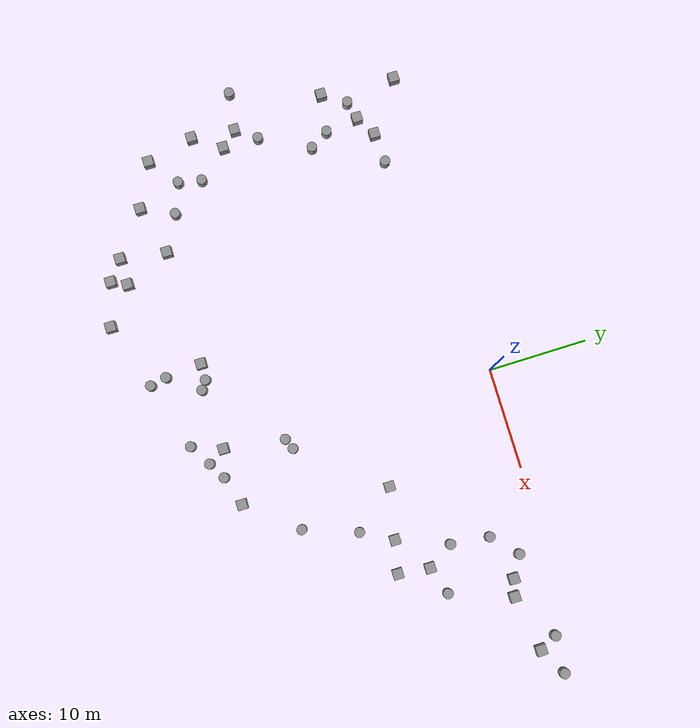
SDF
<sdf version="1.4">
 <world name="default">
  <include><uri>model://urdf/models/sun</uri></include>
  <model name="box_0">
   <pose>8.049341 -12.795973 0.500000 0.000000 0.000000 0.000000</pose>
   <link name="link">
    <inertial>
     <mass>1.000000</mass>
     <inertia>
      <ixx>0.166667</ixx>
      <ixy>0</ixy>
      <ixz>0</ixz>
      <iyy>0.166667</iyy>
      <iyz>0</iyz>
      <izz>0.166667</izz>
     </inertia>
    </inertial>
    <collision name="collision">
     <geometry><box><size>1.000000 1.000000 1.000000</size></box></geometry>
    </collision>
    <visual name="visual">
     <geometry><box><size>1.000000 1.000000 1.000000</size></box></geometry>
     <material>
      <script><name>Gazebo/Grey</name><uri>file://media/materials/scripts/gazebo.material</uri></script>
     </material>
    </visual>
   </link>
  </model>
  <model name="cylindar_3">
   <pose>-23.021515 -3.703456 0.500000 0.000000 0.000000 0.000000</pose>
   <link name="link">
    <inertial>
     <mass>1.000000</mass>
     <inertia><ixx>0.145833</ixx><ixy>0</ixy><ixz>0</ixz><iyy>0.145833</iyy><iyz>0</iyz><izz>0.125</izz></inertia>
    </inertial>
    <collision name="collision">
     <geometry><cylinder><radius>0.500000</radius><length>1.000000</length></cylinder></geometry>
    </collision>
    <visual name="visual">
     <geometry><cylinder><radius>0.500000</radius><length>1.000000</length></cylinder></geometry>
     <material>
      <script><name>Gazebo/Grey</name><uri>file://media/materials/scripts/gazebo.material</uri></script>
     </material>
    </visual>
   </link>
  </model>
  <model name="cylindar_5">
   <pose>-1.222128 -30.100586 0.500000 0.000000 0.000000 0.000000</pose>
   <link name="link">
    <inertial>
     <mass>1.000000</mass>
     <inertia><ixx>0.145833</ixx><ixy>0</ixy><ixz>0</ixz><iyy>0.145833</iyy><iyz>0</iyz><izz>0.125</izz></inertia>
    </inertial>
    <collision name="collision">
     <geometry><cylinder><radius>0.500000</radius><length>1.000000</length></cylinder></geometry>
    </collision>
    <visual name="visual">
     <geometry><cylinder><radius>0.500000</radius><length>1.000000</length></cylinder></geometry>
     <material>
      <script><name>Gazebo/Grey</name><uri>file://media/materials/scripts/gazebo.material</uri></script>
     </material>
    </visual>
   </link>
  </model>
  <model name="box_6">
   <pose>16.189619 -14.473854 0.500000 0.000000 0.000000 0.000000</pose>
   <link name="link">
    <inertial>
     <mass>1.000000</mass>
     <inertia>
      <ixx>0.166667</ixx>
      <ixy>0</ixy>
      <ixz>0</ixz>
      <iyy>0.166667</iyy>
      <iyz>0</iyz>
      <izz>0.166667</izz>
     </inertia>
    </inertial>
    <collision name="collision">
     <geometry><box><size>1.000000 1.000000 1.000000</size></box></geometry>
    </collision>
    <visual name="visual">
     <geometry><box><size>1.000000 1.000000 1.000000</size></box></geometry>
     <material>
      <script><name>Gazebo/Grey</name><uri>file://media/materials/scripts/gazebo.material</uri></script>
     </material>
    </visual>
   </link>
  </model>
  <model name="box_7">
   <pose>-31.569932 -7.850897 0.500000 0.000000 0.000000 0.000000</pose>
   <link name="link">
    <inertial>
     <mass>1.000000</mass>
     <inertia>
      <ixx>0.166667</ixx>
      <ixy>0</ixy>
      <ixz>0</ixz>
      <iyy>0.166667</iyy>
      <iyz>0</iyz>
      <izz>0.166667</izz>
     </inertia>
    </inertial>
    <collision name="collision">
     <geometry><box><size>1.000000 1.000000 1.000000</size></box></geometry>
    </collision>
    <visual name="visual">
     <geometry><box><size>1.000000 1.000000 1.000000</size></box></geometry>
     <material>
      <script><name>Gazebo/Grey</name><uri>file://media/materials/scripts/gazebo.material</uri></script>
     </material>
    </visual>
   </link>
  </model>
  <model name="cylindar_8">
   <pose>0.912190 -28.786770 0.500000 0.000000 0.000000 0.000000</pose>
   <link name="link">
    <inertial>
     <mass>1.000000</mass>
     <inertia><ixx>0.145833</ixx><ixy>0</ixy><ixz>0</ixz><iyy>0.145833</iyy><iyz>0</iyz><izz>0.125</izz></inertia>
    </inertial>
    <collision name="collision">
     <geometry><cylinder><radius>0.500000</radius><length>1.000000</length></cylinder></geometry>
    </collision>
    <visual name="visual">
     <geometry><cylinder><radius>0.500000</radius><length>1.000000</length></cylinder></geometry>
     <material>
      <script><name>Gazebo/Grey</name><uri>file://media/materials/scripts/gazebo.material</uri></script>
     </material>
    </visual>
   </link>
  </model>
  <model name="cylindar_9">
   <pose>-7.065513 -26.953023 0.500000 0.000000 0.000000 0.000000</pose>
   <link name="link">
    <inertial>
     <mass>1.000000</mass>
     <inertia><ixx>0.145833</ixx><ixy>0</ixy><ixz>0</ixz><iyy>0.145833</iyy><iyz>0</iyz><izz>0.125</izz></inertia>
    </inertial>
    <collision name="collision">
     <geometry><cylinder><radius>0.500000</radius><length>1.000000</length></cylinder></geometry>
    </collision>
    <visual name="visual">
     <geometry><cylinder><radius>0.500000</radius><length>1.000000</length></cylinder></geometry>
     <material>
      <script><name>Gazebo/Grey</name><uri>file://media/materials/scripts/gazebo.material</uri></script>
     </material>
    </visual>
   </link>
  </model>
  <model name="box_10">
   <pose>-31.115598 -0.322623 0.500000 0.000000 0.000000 0.000000</pose>
   <link name="link">
    <inertial>
     <mass>1.000000</mass>
     <inertia>
      <ixx>0.166667</ixx>
      <ixy>0</ixy>
      <ixz>0</ixz>
      <iyy>0.166667</iyy>
      <iyz>0</iyz>
      <izz>0.166667</izz>
     </inertia>
    </inertial>
    <collision name="collision">
     <geometry><box><size>1.000000 1.000000 1.000000</size></box></geometry>
    </collision>
    <visual name="visual">
     <geometry><box><size>1.000000 1.000000 1.000000</size></box></geometry>
     <material>
      <script><name>Gazebo/Grey</name><uri>file://media/materials/scripts/gazebo.material</uri></script>
     </material>
    </visual>
   </link>
  </model>
  <model name="box_12">
   <pose>-0.121073 -27.125855 0.500000 0.000000 0.000000 0.000000</pose>
   <link name="link">
    <inertial>
     <mass>1.000000</mass>
     <inertia>
      <ixx>0.166667</ixx>
      <ixy>0</ixy>
      <ixz>0</ixz>
      <iyy>0.166667</iyy>
      <iyz>0</iyz>
      <izz>0.166667</izz>
     </inertia>
    </inertial>
    <collision name="collision">
     <geometry><box><size>1.000000 1.000000 1.000000</size></box></geometry>
    </collision>
    <visual name="visual">
     <geometry><box><size>1.000000 1.000000 1.000000</size></box></geometry>
     <material>
      <script><name>Gazebo/Grey</name><uri>file://media/materials/scripts/gazebo.material</uri></script>
     </material>
    </visual>
   </link>
  </model>
  <model name="cylindar_14">
   <pose>1.834610 -20.665780 0.500000 0.000000 0.000000 0.000000</pose>
   <link name="link">
    <inertial>
     <mass>1.000000</mass>
     <inertia><ixx>0.145833</ixx><ixy>0</ixy><ixz>0</ixz><iyy>0.145833</iyy><iyz>0</iyz><izz>0.125</izz></inertia>
    </inertial>
    <collision name="collision">
     <geometry><cylinder><radius>0.500000</radius><length>1.000000</length></cylinder></geometry>
    </collision>
    <visual name="visual">
     <geometry><cylinder><radius>0.500000</radius><length>1.000000</length></cylinder></geometry>
     <material>
      <script><name>Gazebo/Grey</name><uri>file://media/materials/scripts/gazebo.material</uri></script>
     </material>
    </visual>
   </link>
  </model>
  <model name="cylindar_16">
   <pose>29.565730 -2.149706 0.500000 0.000000 0.000000 0.000000</pose>
   <link name="link">
    <inertial>
     <mass>1.000000</mass>
     <inertia><ixx>0.145833</ixx><ixy>0</ixy><ixz>0</ixz><iyy>0.145833</iyy><iyz>0</iyz><izz>0.125</izz></inertia>
    </inertial>
    <collision name="collision">
     <geometry><cylinder><radius>0.500000</radius><length>1.000000</length></cylinder></geometry>
    </collision>
    <visual name="visual">
     <geometry><cylinder><radius>0.500000</radius><length>1.000000</length></cylinder></geometry>
     <material>
      <script><name>Gazebo/Grey</name><uri>file://media/materials/scripts/gazebo.material</uri></script>
     </material>
    </visual>
   </link>
  </model>
  <model name="cylindar_18">
   <pose>19.340142 -10.447154 0.500000 0.000000 0.000000 0.000000</pose>
   <link name="link">
    <inertial>
     <mass>1.000000</mass>
     <inertia><ixx>0.145833</ixx><ixy>0</ixy><ixz>0</ixz><iyy>0.145833</iyy><iyz>0</iyz><izz>0.125</izz></inertia>
    </inertial>
    <collision name="collision">
     <geometry><cylinder><radius>0.500000</radius><length>1.000000</length></cylinder></geometry>
    </collision>
    <visual name="visual">
     <geometry><cylinder><radius>0.500000</radius><length>1.000000</length></cylinder></geometry>
     <material>
      <script><name>Gazebo/Grey</name><uri>file://media/materials/scripts/gazebo.material</uri></script>
     </material>
    </visual>
   </link>
  </model>
  <model name="box_19">
   <pose>-20.448026 -27.128200 0.500000 0.000000 0.000000 0.000000</pose>
   <link name="link">
    <inertial>
     <mass>1.000000</mass>
     <inertia>
      <ixx>0.166667</ixx>
      <ixy>0</ixy>
      <ixz>0</ixz>
      <iyy>0.166667</iyy>
      <iyz>0</iyz>
      <izz>0.166667</izz>
     </inertia>
    </inertial>
    <collision name="collision">
     <geometry><box><size>1.000000 1.000000 1.000000</size></box></geometry>
    </collision>
    <visual name="visual">
     <geometry><box><size>1.000000 1.000000 1.000000</size></box></geometry>
     <material>
      <script><name>Gazebo/Grey</name><uri>file://media/materials/scripts/gazebo.material</uri></script>
     </material>
    </visual>
   </link>
  </model>
  <model name="box_20">
   <pose>-21.140862 -31.742281 0.500000 0.000000 0.000000 0.000000</pose>
   <link name="link">
    <inertial>
     <mass>1.000000</mass>
     <inertia>
      <ixx>0.166667</ixx>
      <ixy>0</ixy>
      <ixz>0</ixz>
      <iyy>0.166667</iyy>
      <iyz>0</iyz>
      <izz>0.166667</izz>
     </inertia>
    </inertial>
    <collision name="collision">
     <geometry><box><size>1.000000 1.000000 1.000000</size></box></geometry>
    </collision>
    <visual name="visual">
     <geometry><box><size>1.000000 1.000000 1.000000</size></box></geometry>
     <material>
      <script><name>Gazebo/Grey</name><uri>file://media/materials/scripts/gazebo.material</uri></script>
     </material>
    </visual>
   </link>
  </model>
  <model name="cylindar_23">
   <pose>-8.398775 -30.569420 0.500000 0.000000 0.000000 0.000000</pose>
   <link name="link">
    <inertial>
     <mass>1.000000</mass>
     <inertia><ixx>0.145833</ixx><ixy>0</ixy><ixz>0</ixz><iyy>0.145833</iyy><iyz>0</iyz><izz>0.125</izz></inertia>
    </inertial>
    <collision name="collision">
     <geometry><cylinder><radius>0.500000</radius><length>1.000000</length></cylinder></geometry>
    </collision>
    <visual name="visual">
     <geometry><cylinder><radius>0.500000</radius><length>1.000000</length></cylinder></geometry>
     <material>
      <script><name>Gazebo/Grey</name><uri>file://media/materials/scripts/gazebo.material</uri></script>
     </material>
    </visual>
   </link>
  </model>
  <model name="box_29">
   <pose>-26.080019 -3.890634 0.500000 0.000000 0.000000 0.000000</pose>
   <link name="link">
    <inertial>
     <mass>1.000000</mass>
     <inertia>
      <ixx>0.166667</ixx>
      <ixy>0</ixy>
      <ixz>0</ixz>
      <iyy>0.166667</iyy>
      <iyz>0</iyz>
      <izz>0.166667</izz>
     </inertia>
    </inertial>
    <collision name="collision">
     <geometry><box><size>1.000000 1.000000 1.000000</size></box></geometry>
    </collision>
    <visual name="visual">
     <geometry><box><size>1.000000 1.000000 1.000000</size></box></geometry>
     <material>
      <script><name>Gazebo/Grey</name><uri>file://media/materials/scripts/gazebo.material</uri></script>
     </material>
    </visual>
   </link>
  </model>
  <model name="cylindar_30">
   <pose>14.987610 -8.820955 0.500000 0.000000 0.000000 0.000000</pose>
   <link name="link">
    <inertial>
     <mass>1.000000</mass>
     <inertia><ixx>0.145833</ixx><ixy>0</ixy><ixz>0</ixz><iyy>0.145833</iyy><iyz>0</iyz><izz>0.125</izz></inertia>
    </inertial>
    <collision name="collision">
     <geometry><cylinder><radius>0.500000</radius><length>1.000000</length></cylinder></geometry>
    </collision>
    <visual name="visual">
     <geometry><cylinder><radius>0.500000</radius><length>1.000000</length></cylinder></geometry>
     <material>
      <script><name>Gazebo/Grey</name><uri>file://media/materials/scripts/gazebo.material</uri></script>
     </material>
    </visual>
   </link>
  </model>
  <model name="cylindar_31">
   <pose>-8.042111 -32.215314 0.500000 0.000000 0.000000 0.000000</pose>
   <link name="link">
    <inertial>
     <mass>1.000000</mass>
     <inertia><ixx>0.145833</ixx><ixy>0</ixy><ixz>0</ixz><iyy>0.145833</iyy><iyz>0</iyz><izz>0.125</izz></inertia>
    </inertial>
    <collision name="collision">
     <geometry><cylinder><radius>0.500000</radius><length>1.000000</length></cylinder></geometry>
    </collision>
    <visual name="visual">
     <geometry><cylinder><radius>0.500000</radius><length>1.000000</length></cylinder></geometry>
     <material>
      <script><name>Gazebo/Grey</name><uri>file://media/materials/scripts/gazebo.material</uri></script>
     </material>
    </visual>
   </link>
  </model>
  <model name="cylindar_33">
   <pose>15.416123 -5.012400 0.500000 0.000000 0.000000 0.000000</pose>
   <link name="link">
    <inertial>
     <mass>1.000000</mass>
     <inertia><ixx>0.145833</ixx><ixy>0</ixy><ixz>0</ixz><iyy>0.145833</iyy><iyz>0</iyz><izz>0.125</izz></inertia>
    </inertial>
    <collision name="collision">
     <geometry><cylinder><radius>0.500000</radius><length>1.000000</length></cylinder></geometry>
    </collision>
    <visual name="visual">
     <geometry><cylinder><radius>0.500000</radius><length>1.000000</length></cylinder></geometry>
     <material>
      <script><name>Gazebo/Grey</name><uri>file://media/materials/scripts/gazebo.material</uri></script>
     </material>
    </visual>
   </link>
  </model>
  <model name="cylindar_35">
   <pose>-29.066448 -15.208298 0.500000 0.000000 0.000000 0.000000</pose>
   <link name="link">
    <inertial>
     <mass>1.000000</mass>
     <inertia><ixx>0.145833</ixx><ixy>0</ixy><ixz>0</ixz><iyy>0.145833</iyy><iyz>0</iyz><izz>0.125</izz></inertia>
    </inertial>
    <collision name="collision">
     <geometry><cylinder><radius>0.500000</radius><length>1.000000</length></cylinder></geometry>
    </collision>
    <visual name="visual">
     <geometry><cylinder><radius>0.500000</radius><length>1.000000</length></cylinder></geometry>
     <material>
      <script><name>Gazebo/Grey</name><uri>file://media/materials/scripts/gazebo.material</uri></script>
     </material>
    </visual>
   </link>
  </model>
  <model name="cylindar_36">
   <pose>9.520125 -22.059783 0.500000 0.000000 0.000000 0.000000</pose>
   <link name="link">
    <inertial>
     <mass>1.000000</mass>
     <inertia><ixx>0.145833</ixx><ixy>0</ixy><ixz>0</ixz><iyy>0.145833</iyy><iyz>0</iyz><izz>0.125</izz></inertia>
    </inertial>
    <collision name="collision">
     <geometry><cylinder><radius>0.500000</radius><length>1.000000</length></cylinder></geometry>
    </collision>
    <visual name="visual">
     <geometry><cylinder><radius>0.500000</radius><length>1.000000</length></cylinder></geometry>
     <material>
      <script><name>Gazebo/Grey</name><uri>file://media/materials/scripts/gazebo.material</uri></script>
     </material>
    </visual>
   </link>
  </model>
  <model name="cylindar_37">
   <pose>-26.492907 -21.793048 0.500000 0.000000 0.000000 0.000000</pose>
   <link name="link">
    <inertial>
     <mass>1.000000</mass>
     <inertia><ixx>0.145833</ixx><ixy>0</ixy><ixz>0</ixz><iyy>0.145833</iyy><iyz>0</iyz><izz>0.125</izz></inertia>
    </inertial>
    <collision name="collision">
     <geometry><cylinder><radius>0.500000</radius><length>1.000000</length></cylinder></geometry>
    </collision>
    <visual name="visual">
     <geometry><cylinder><radius>0.500000</radius><length>1.000000</length></cylinder></geometry>
     <material>
      <script><name>Gazebo/Grey</name><uri>file://media/materials/scripts/gazebo.material</uri></script>
     </material>
    </visual>
   </link>
  </model>
  <model name="box_39">
   <pose>13.050045 -13.792314 0.500000 0.000000 0.000000 0.000000</pose>
   <link name="link">
    <inertial>
     <mass>1.000000</mass>
     <inertia>
      <ixx>0.166667</ixx>
      <ixy>0</ixy>
      <ixz>0</ixz>
      <iyy>0.166667</iyy>
      <iyz>0</iyz>
      <izz>0.166667</izz>
     </inertia>
    </inertial>
    <collision name="collision">
     <geometry><box><size>1.000000 1.000000 1.000000</size></box></geometry>
    </collision>
    <visual name="visual">
     <geometry><box><size>1.000000 1.000000 1.000000</size></box></geometry>
     <material>
      <script><name>Gazebo/Grey</name><uri>file://media/materials/scripts/gazebo.material</uri></script>
     </material>
    </visual>
   </link>
  </model>
  <model name="box_40">
   <pose>-19.147465 -33.238386 0.500000 0.000000 0.000000 0.000000</pose>
   <link name="link">
    <inertial>
     <mass>1.000000</mass>
     <inertia>
      <ixx>0.166667</ixx>
      <ixy>0</ixy>
      <ixz>0</ixz>
      <iyy>0.166667</iyy>
      <iyz>0</iyz>
      <izz>0.166667</izz>
     </inertia>
    </inertial>
    <collision name="collision">
     <geometry><box><size>1.000000 1.000000 1.000000</size></box></geometry>
    </collision>
    <visual name="visual">
     <geometry><box><size>1.000000 1.000000 1.000000</size></box></geometry>
     <material>
      <script><name>Gazebo/Grey</name><uri>file://media/materials/scripts/gazebo.material</uri></script>
     </material>
    </visual>
   </link>
  </model>
  <model name="box_42">
   <pose>-29.863723 -26.392566 0.500000 0.000000 0.000000 0.000000</pose>
   <link name="link">
    <inertial>
     <mass>1.000000</mass>
     <inertia>
      <ixx>0.166667</ixx>
      <ixy>0</ixy>
      <ixz>0</ixz>
      <iyy>0.166667</iyy>
      <iyz>0</iyz>
      <izz>0.166667</izz>
     </inertia>
    </inertial>
    <collision name="collision">
     <geometry><box><size>1.000000 1.000000 1.000000</size></box></geometry>
    </collision>
    <visual name="visual">
     <geometry><box><size>1.000000 1.000000 1.000000</size></box></geometry>
     <material>
      <script><name>Gazebo/Grey</name><uri>file://media/materials/scripts/gazebo.material</uri></script>
     </material>
    </visual>
   </link>
  </model>
  <model name="cylindar_43">
   <pose>-23.945715 -25.249269 0.500000 0.000000 0.000000 0.000000</pose>
   <link name="link">
    <inertial>
     <mass>1.000000</mass>
     <inertia><ixx>0.145833</ixx><ixy>0</ixy><ixz>0</ixz><iyy>0.145833</iyy><iyz>0</iyz><izz>0.125</izz></inertia>
    </inertial>
    <collision name="collision">
     <geometry><cylinder><radius>0.500000</radius><length>1.000000</length></cylinder></geometry>
    </collision>
    <visual name="visual">
     <geometry><cylinder><radius>0.500000</radius><length>1.000000</length></cylinder></geometry>
     <material>
      <script><name>Gazebo/Grey</name><uri>file://media/materials/scripts/gazebo.material</uri></script>
     </material>
    </visual>
   </link>
  </model>
  <model name="box_45">
   <pose>-8.738110 -26.936090 0.500000 0.000000 0.000000 0.000000</pose>
   <link name="link">
    <inertial>
     <mass>1.000000</mass>
     <inertia>
      <ixx>0.166667</ixx>
      <ixy>0</ixy>
      <ixz>0</ixz>
      <iyy>0.166667</iyy>
      <iyz>0</iyz>
      <izz>0.166667</izz>
     </inertia>
    </inertial>
    <collision name="collision">
     <geometry><box><size>1.000000 1.000000 1.000000</size></box></geometry>
    </collision>
    <visual name="visual">
     <geometry><box><size>1.000000 1.000000 1.000000</size></box></geometry>
     <material>
      <script><name>Gazebo/Grey</name><uri>file://media/materials/scripts/gazebo.material</uri></script>
     </material>
    </visual>
   </link>
  </model>
  <model name="box_47">
   <pose>19.829592 -4.010149 0.500000 0.000000 0.000000 0.000000</pose>
   <link name="link">
    <inertial>
     <mass>1.000000</mass>
     <inertia>
      <ixx>0.166667</ixx>
      <ixy>0</ixy>
      <ixz>0</ixz>
      <iyy>0.166667</iyy>
      <iyz>0</iyz>
      <izz>0.166667</izz>
     </inertia>
    </inertial>
    <collision name="collision">
     <geometry><box><size>1.000000 1.000000 1.000000</size></box></geometry>
    </collision>
    <visual name="visual">
     <geometry><box><size>1.000000 1.000000 1.000000</size></box></geometry>
     <material>
      <script><name>Gazebo/Grey</name><uri>file://media/materials/scripts/gazebo.material</uri></script>
     </material>
    </visual>
   </link>
  </model>
  <model name="box_54">
   <pose>-25.467613 -28.480302 0.500000 0.000000 0.000000 0.000000</pose>
   <link name="link">
    <inertial>
     <mass>1.000000</mass>
     <inertia>
      <ixx>0.166667</ixx>
      <ixy>0</ixy>
      <ixz>0</ixz>
      <iyy>0.166667</iyy>
      <iyz>0</iyz>
      <izz>0.166667</izz>
     </inertia>
    </inertial>
    <collision name="collision">
     <geometry><box><size>1.000000 1.000000 1.000000</size></box></geometry>
    </collision>
    <visual name="visual">
     <geometry><box><size>1.000000 1.000000 1.000000</size></box></geometry>
     <material>
      <script><name>Gazebo/Grey</name><uri>file://media/materials/scripts/gazebo.material</uri></script>
     </material>
    </visual>
   </link>
  </model>
  <model name="cylindar_55">
   <pose>-30.006184 -5.540009 0.500000 0.000000 0.000000 0.000000</pose>
   <link name="link">
    <inertial>
     <mass>1.000000</mass>
     <inertia><ixx>0.145833</ixx><ixy>0</ixy><ixz>0</ixz><iyy>0.145833</iyy><iyz>0</iyz><izz>0.125</izz></inertia>
    </inertial>
    <collision name="collision">
     <geometry><cylinder><radius>0.500000</radius><length>1.000000</length></cylinder></geometry>
    </collision>
    <visual name="visual">
     <geometry><cylinder><radius>0.500000</radius><length>1.000000</length></cylinder></geometry>
     <material>
      <script><name>Gazebo/Grey</name><uri>file://media/materials/scripts/gazebo.material</uri></script>
     </material>
    </visual>
   </link>
  </model>
  <model name="cylindar_57">
   <pose>26.031230 -1.877455 0.500000 0.000000 0.000000 0.000000</pose>
   <link name="link">
    <inertial>
     <mass>1.000000</mass>
     <inertia><ixx>0.145833</ixx><ixy>0</ixy><ixz>0</ixz><iyy>0.145833</iyy><iyz>0</iyz><izz>0.125</izz></inertia>
    </inertial>
    <collision name="collision">
     <geometry><cylinder><radius>0.500000</radius><length>1.000000</length></cylinder></geometry>
    </collision>
    <visual name="visual">
     <geometry><cylinder><radius>0.500000</radius><length>1.000000</length></cylinder></geometry>
     <material>
      <script><name>Gazebo/Grey</name><uri>file://media/materials/scripts/gazebo.material</uri></script>
     </material>
    </visual>
   </link>
  </model>
  <model name="cylindar_60">
   <pose>11.389661 -16.828066 0.500000 0.000000 0.000000 0.000000</pose>
   <link name="link">
    <inertial>
     <mass>1.000000</mass>
     <inertia><ixx>0.145833</ixx><ixy>0</ixy><ixz>0</ixz><iyy>0.145833</iyy><iyz>0</iyz><izz>0.125</izz></inertia>
    </inertial>
    <collision name="collision">
     <geometry><cylinder><radius>0.500000</radius><length>1.000000</length></cylinder></geometry>
    </collision>
    <visual name="visual">
     <geometry><cylinder><radius>0.500000</radius><length>1.000000</length></cylinder></geometry>
     <material>
      <script><name>Gazebo/Grey</name><uri>file://media/materials/scripts/gazebo.material</uri></script>
     </material>
    </visual>
   </link>
  </model>
  <model name="box_61">
   <pose>-28.164328 -5.084631 0.500000 0.000000 0.000000 0.000000</pose>
   <link name="link">
    <inertial>
     <mass>1.000000</mass>
     <inertia>
      <ixx>0.166667</ixx>
      <ixy>0</ixy>
      <ixz>0</ixz>
      <iyy>0.166667</iyy>
      <iyz>0</iyz>
      <izz>0.166667</izz>
     </inertia>
    </inertial>
    <collision name="collision">
     <geometry><box><size>1.000000 1.000000 1.000000</size></box></geometry>
    </collision>
    <visual name="visual">
     <geometry><box><size>1.000000 1.000000 1.000000</size></box></geometry>
     <material>
      <script><name>Gazebo/Grey</name><uri>file://media/materials/scripts/gazebo.material</uri></script>
     </material>
    </visual>
   </link>
  </model>
  <model name="box_62">
   <pose>26.896856 -3.586817 0.500000 0.000000 0.000000 0.000000</pose>
   <link name="link">
    <inertial>
     <mass>1.000000</mass>
     <inertia>
      <ixx>0.166667</ixx>
      <ixy>0</ixy>
      <ixz>0</ixz>
      <iyy>0.166667</iyy>
      <iyz>0</iyz>
      <izz>0.166667</izz>
     </inertia>
    </inertial>
    <collision name="collision">
     <geometry><box><size>1.000000 1.000000 1.000000</size></box></geometry>
    </collision>
    <visual name="visual">
     <geometry><box><size>1.000000 1.000000 1.000000</size></box></geometry>
     <material>
      <script><name>Gazebo/Grey</name><uri>file://media/materials/scripts/gazebo.material</uri></script>
     </material>
    </visual>
   </link>
  </model>
  <model name="box_63">
   <pose>-30.562019 -17.230886 0.500000 0.000000 0.000000 0.000000</pose>
   <link name="link">
    <inertial>
     <mass>1.000000</mass>
     <inertia>
      <ixx>0.166667</ixx>
      <ixy>0</ixy>
      <ixz>0</ixz>
      <iyy>0.166667</iyy>
      <iyz>0</iyz>
      <izz>0.166667</izz>
     </inertia>
    </inertial>
    <collision name="collision">
     <geometry><box><size>1.000000 1.000000 1.000000</size></box></geometry>
    </collision>
    <visual name="visual">
     <geometry><box><size>1.000000 1.000000 1.000000</size></box></geometry>
     <material>
      <script><name>Gazebo/Grey</name><uri>file://media/materials/scripts/gazebo.material</uri></script>
     </material>
    </visual>
   </link>
  </model>
  <model name="cylindar_67">
   <pose>0.745312 -21.126213 0.500000 0.000000 0.000000 0.000000</pose>
   <link name="link">
    <inertial>
     <mass>1.000000</mass>
     <inertia><ixx>0.145833</ixx><ixy>0</ixy><ixz>0</ixz><iyy>0.145833</iyy><iyz>0</iyz><izz>0.125</izz></inertia>
    </inertial>
    <collision name="collision">
     <geometry><cylinder><radius>0.500000</radius><length>1.000000</length></cylinder></geometry>
    </collision>
    <visual name="visual">
     <geometry><cylinder><radius>0.500000</radius><length>1.000000</length></cylinder></geometry>
     <material>
      <script><name>Gazebo/Grey</name><uri>file://media/materials/scripts/gazebo.material</uri></script>
     </material>
    </visual>
   </link>
  </model>
  <model name="box_70">
   <pose>16.548593 -11.348823 0.500000 0.000000 0.000000 0.000000</pose>
   <link name="link">
    <inertial>
     <mass>1.000000</mass>
     <inertia>
      <ixx>0.166667</ixx>
      <ixy>0</ixy>
      <ixz>0</ixz>
      <iyy>0.166667</iyy>
      <iyz>0</iyz>
      <izz>0.166667</izz>
     </inertia>
    </inertial>
    <collision name="collision">
     <geometry><box><size>1.000000 1.000000 1.000000</size></box></geometry>
    </collision>
    <visual name="visual">
     <geometry><box><size>1.000000 1.000000 1.000000</size></box></geometry>
     <material>
      <script><name>Gazebo/Grey</name><uri>file://media/materials/scripts/gazebo.material</uri></script>
     </material>
    </visual>
   </link>
  </model>
  <model name="cylindar_71">
   <pose>-27.684221 -8.422537 0.500000 0.000000 0.000000 0.000000</pose>
   <link name="link">
    <inertial>
     <mass>1.000000</mass>
     <inertia><ixx>0.145833</ixx><ixy>0</ixy><ixz>0</ixz><iyy>0.145833</iyy><iyz>0</iyz><izz>0.125</izz></inertia>
    </inertial>
    <collision name="collision">
     <geometry><cylinder><radius>0.500000</radius><length>1.000000</length></cylinder></geometry>
    </collision>
    <visual name="visual">
     <geometry><cylinder><radius>0.500000</radius><length>1.000000</length></cylinder></geometry>
     <material>
      <script><name>Gazebo/Grey</name><uri>file://media/materials/scripts/gazebo.material</uri></script>
     </material>
    </visual>
   </link>
  </model>
  <model name="box_75">
   <pose>-14.792187 -34.418877 0.500000 0.000000 0.000000 0.000000</pose>
   <link name="link">
    <inertial>
     <mass>1.000000</mass>
     <inertia>
      <ixx>0.166667</ixx>
      <ixy>0</ixy>
      <ixz>0</ixz>
      <iyy>0.166667</iyy>
      <iyz>0</iyz>
      <izz>0.166667</izz>
     </inertia>
    </inertial>
    <collision name="collision">
     <geometry><box><size>1.000000 1.000000 1.000000</size></box></geometry>
    </collision>
    <visual name="visual">
     <geometry><box><size>1.000000 1.000000 1.000000</size></box></geometry>
     <material>
      <script><name>Gazebo/Grey</name><uri>file://media/materials/scripts/gazebo.material</uri></script>
     </material>
    </visual>
   </link>
  </model>
  <model name="box_77">
   <pose>5.557072 -26.884175 0.500000 0.000000 0.000000 0.000000</pose>
   <link name="link">
    <inertial>
     <mass>1.000000</mass>
     <inertia>
      <ixx>0.166667</ixx>
      <ixy>0</ixy>
      <ixz>0</ixz>
      <iyy>0.166667</iyy>
      <iyz>0</iyz>
      <izz>0.166667</izz>
     </inertia>
    </inertial>
    <collision name="collision">
     <geometry><box><size>1.000000 1.000000 1.000000</size></box></geometry>
    </collision>
    <visual name="visual">
     <geometry><box><size>1.000000 1.000000 1.000000</size></box></geometry>
     <material>
      <script><name>Gazebo/Grey</name><uri>file://media/materials/scripts/gazebo.material</uri></script>
     </material>
    </visual>
   </link>
  </model>
  <model name="box_78">
   <pose>-29.121789 -18.817971 0.500000 0.000000 0.000000 0.000000</pose>
   <link name="link">
    <inertial>
     <mass>1.000000</mass>
     <inertia>
      <ixx>0.166667</ixx>
      <ixy>0</ixy>
      <ixz>0</ixz>
      <iyy>0.166667</iyy>
      <iyz>0</iyz>
      <izz>0.166667</izz>
     </inertia>
    </inertial>
    <collision name="collision">
     <geometry><box><size>1.000000 1.000000 1.000000</size></box></geometry>
    </collision>
    <visual name="visual">
     <geometry><box><size>1.000000 1.000000 1.000000</size></box></geometry>
     <material>
      <script><name>Gazebo/Grey</name><uri>file://media/materials/scripts/gazebo.material</uri></script>
     </material>
    </visual>
   </link>
  </model>
  <model name="cylindar_79">
   <pose>-26.510198 -10.295589 0.500000 0.000000 0.000000 0.000000</pose>
   <link name="link">
    <inertial>
     <mass>1.000000</mass>
     <inertia><ixx>0.145833</ixx><ixy>0</ixy><ixz>0</ixz><iyy>0.145833</iyy><iyz>0</iyz><izz>0.125</izz></inertia>
    </inertial>
    <collision name="collision">
     <geometry><cylinder><radius>0.500000</radius><length>1.000000</length></cylinder></geometry>
    </collision>
    <visual name="visual">
     <geometry><cylinder><radius>0.500000</radius><length>1.000000</length></cylinder></geometry>
     <material>
      <script><name>Gazebo/Grey</name><uri>file://media/materials/scripts/gazebo.material</uri></script>
     </material>
    </visual>
   </link>
  </model>
  <model name="cylindar_81">
   <pose>-6.193446 -27.544810 0.500000 0.000000 0.000000 0.000000</pose>
   <link name="link">
    <inertial>
     <mass>1.000000</mass>
     <inertia><ixx>0.145833</ixx><ixy>0</ixy><ixz>0</ixz><iyy>0.145833</iyy><iyz>0</iyz><izz>0.125</izz></inertia>
    </inertial>
    <collision name="collision">
     <geometry><cylinder><radius>0.500000</radius><length>1.000000</length></cylinder></geometry>
    </collision>
    <visual name="visual">
     <geometry><cylinder><radius>0.500000</radius><length>1.000000</length></cylinder></geometry>
     <material>
      <script><name>Gazebo/Grey</name><uri>file://media/materials/scripts/gazebo.material</uri></script>
     </material>
    </visual>
   </link>
  </model>
  <model name="cylindar_82">
   <pose>17.784854 -2.787425 0.500000 0.000000 0.000000 0.000000</pose>
   <link name="link">
    <inertial>
     <mass>1.000000</mass>
     <inertia><ixx>0.145833</ixx><ixy>0</ixy><ixz>0</ixz><iyy>0.145833</iyy><iyz>0</iyz><izz>0.125</izz></inertia>
    </inertial>
    <collision name="collision">
     <geometry><cylinder><radius>0.500000</radius><length>1.000000</length></cylinder></geometry>
    </collision>
    <visual name="visual">
     <geometry><cylinder><radius>0.500000</radius><length>1.000000</length></cylinder></geometry>
     <material>
      <script><name>Gazebo/Grey</name><uri>file://media/materials/scripts/gazebo.material</uri></script>
     </material>
    </visual>
   </link>
  </model>
  <model name="cylindar_84">
   <pose>2.589245 -27.814598 0.500000 0.000000 0.000000 0.000000</pose>
   <link name="link">
    <inertial>
     <mass>1.000000</mass>
     <inertia><ixx>0.145833</ixx><ixy>0</ixy><ixz>0</ixz><iyy>0.145833</iyy><iyz>0</iyz><izz>0.125</izz></inertia>
    </inertial>
    <collision name="collision">
     <geometry><cylinder><radius>0.500000</radius><length>1.000000</length></cylinder></geometry>
    </collision>
    <visual name="visual">
     <geometry><cylinder><radius>0.500000</radius><length>1.000000</length></cylinder></geometry>
     <material>
      <script><name>Gazebo/Grey</name><uri>file://media/materials/scripts/gazebo.material</uri></script>
     </material>
    </visual>
   </link>
  </model>
  <model name="box_85">
   <pose>21.470570 -4.456285 0.500000 0.000000 0.000000 0.000000</pose>
   <link name="link">
    <inertial>
     <mass>1.000000</mass>
     <inertia>
      <ixx>0.166667</ixx>
      <ixy>0</ixy>
      <ixz>0</ixz>
      <iyy>0.166667</iyy>
      <iyz>0</iyz>
      <izz>0.166667</izz>
     </inertia>
    </inertial>
    <collision name="collision">
     <geometry><box><size>1.000000 1.000000 1.000000</size></box></geometry>
    </collision>
    <visual name="visual">
     <geometry><box><size>1.000000 1.000000 1.000000</size></box></geometry>
     <material>
      <script><name>Gazebo/Grey</name><uri>file://media/materials/scripts/gazebo.material</uri></script>
     </material>
    </visual>
   </link>
  </model>
  <model name="box_90">
   <pose>-31.029551 -21.601758 0.500000 0.000000 0.000000 0.000000</pose>
   <link name="link">
    <inertial>
     <mass>1.000000</mass>
     <inertia>
      <ixx>0.166667</ixx>
      <ixy>0</ixy>
      <ixz>0</ixz>
      <iyy>0.166667</iyy>
      <iyz>0</iyz>
      <izz>0.166667</izz>
     </inertia>
    </inertial>
    <collision name="collision">
     <geometry><box><size>1.000000 1.000000 1.000000</size></box></geometry>
    </collision>
    <visual name="visual">
     <geometry><box><size>1.000000 1.000000 1.000000</size></box></geometry>
     <material>
      <script><name>Gazebo/Grey</name><uri>file://media/materials/scripts/gazebo.material</uri></script>
     </material>
    </visual>
   </link>
  </model>
  <model name="box_91">
   <pose>-18.429179 -31.714140 0.500000 0.000000 0.000000 0.000000</pose>
   <link name="link">
    <inertial>
     <mass>1.000000</mass>
     <inertia>
      <ixx>0.166667</ixx>
      <ixy>0</ixy>
      <ixz>0</ixz>
      <iyy>0.166667</iyy>
      <iyz>0</iyz>
      <izz>0.166667</izz>
     </inertia>
    </inertial>
    <collision name="collision">
     <geometry><box><size>1.000000 1.000000 1.000000</size></box></geometry>
    </collision>
    <visual name="visual">
     <geometry><box><size>1.000000 1.000000 1.000000</size></box></geometry>
     <material>
      <script><name>Gazebo/Grey</name><uri>file://media/materials/scripts/gazebo.material</uri></script>
     </material>
    </visual>
   </link>
  </model>
  <model name="cylindar_96">
   <pose>-34.384188 -16.673772 0.500000 0.000000 0.000000 0.000000</pose>
   <link name="link">
    <inertial>
     <mass>1.000000</mass>
     <inertia><ixx>0.145833</ixx><ixy>0</ixy><ixz>0</ixz><iyy>0.145833</iyy><iyz>0</iyz><izz>0.125</izz></inertia>
    </inertial>
    <collision name="collision">
     <geometry><cylinder><radius>0.500000</radius><length>1.000000</length></cylinder></geometry>
    </collision>
    <visual name="visual">
     <geometry><cylinder><radius>0.500000</radius><length>1.000000</length></cylinder></geometry>
     <material>
      <script><name>Gazebo/Grey</name><uri>file://media/materials/scripts/gazebo.material</uri></script>
     </material>
    </visual>
   </link>
  </model>
  <model name="cylindar_97">
   <pose>-26.964803 -24.113184 0.500000 0.000000 0.000000 0.000000</pose>
   <link name="link">
    <inertial>
     <mass>1.000000</mass>
     <inertia><ixx>0.145833</ixx><ixy>0</ixy><ixz>0</ixz><iyy>0.145833</iyy><iyz>0</iyz><izz>0.125</izz></inertia>
    </inertial>
    <collision name="collision">
     <geometry><cylinder><radius>0.500000</radius><length>1.000000</length></cylinder></geometry>
    </collision>
    <visual name="visual">
     <geometry><cylinder><radius>0.500000</radius><length>1.000000</length></cylinder></geometry>
     <material>
      <script><name>Gazebo/Grey</name><uri>file://media/materials/scripts/gazebo.material</uri></script>
     </material>
    </visual>
   </link>
  </model>
 </world>
</sdf>
